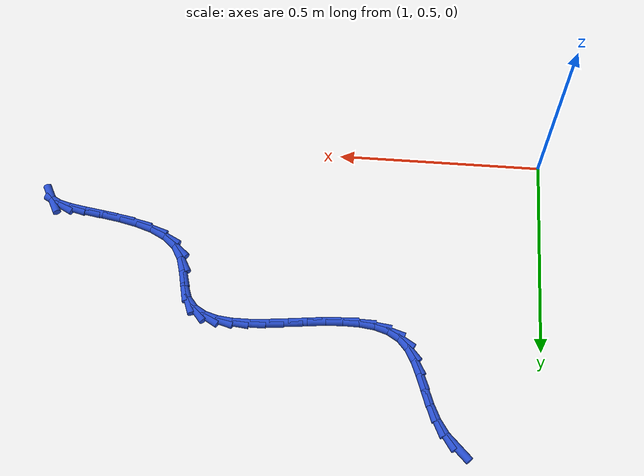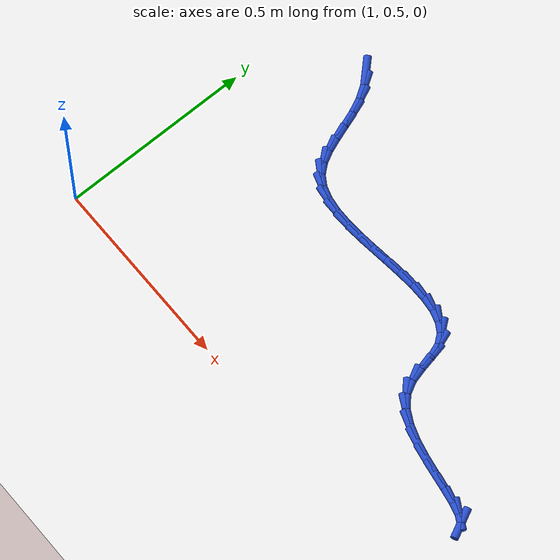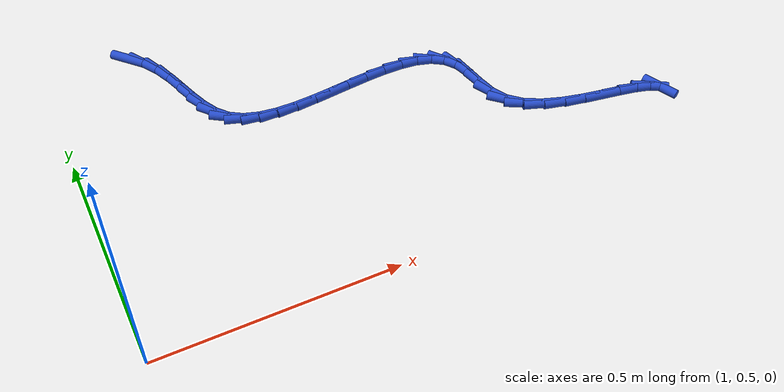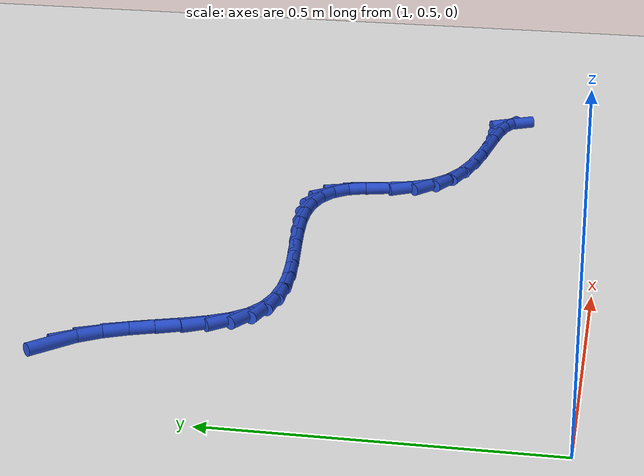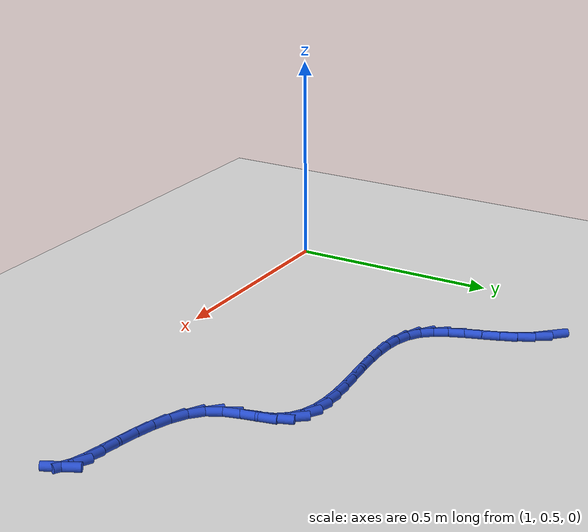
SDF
<sdf version="1.6">
 <world name="default">
  <model name="ground_plane">
   <static>1</static>
   <link name="link">
    <collision name="collision">
     <geometry><plane><normal>0 0 1</normal><size>100 100</size></plane></geometry>
     <surface><friction><ode><mu>100</mu><mu2>50</mu2></ode></friction></surface>
    </collision>
    <visual name="visual">
     <cast_shadows>0</cast_shadows>
     <geometry><plane><normal>0 0 1</normal><size>100 100</size></plane></geometry>
     <material>
      <script><uri>file://media/materials/scripts/gazebo.material</uri><name>Gazebo/WhiteGlow</name></script>
     </material>
    </visual>
   </link>
  </model>
  <model name="line">
   <link name="link_54">
    <pose>1.1929098045667912 1.25034103382618 0.01 0 1.57 -0.8032002500355849</pose>
    <collision name="collision">
     <geometry><cylinder><radius>0.01</radius><length>0.08</length></cylinder></geometry>
    </collision>
    <visual name="visual">
     <material>
      <script><name>Gazebo/Blue</name><uri>file://media/materials/scripts/gazebo.material</uri></script>
     </material>
     <geometry><cylinder><radius>0.01</radius><length>0.08</length></cylinder></geometry>
    </visual>
   </link>
   <link name="link_55">
    <pose>1.2198292674862001 1.2224456491440163 0.01 0 1.57 -0.9971599089499282</pose>
    <collision name="collision">
     <geometry><cylinder><radius>0.01</radius><length>0.08</length></cylinder></geometry>
    </collision>
    <visual name="visual">
     <material>
      <script><name>Gazebo/Blue</name><uri>file://media/materials/scripts/gazebo.material</uri></script>
     </material>
     <geometry><cylinder><radius>0.01</radius><length>0.08</length></cylinder></geometry>
    </visual>
   </link>
   <link name="link_56">
    <pose>1.2407832895362265 1.190014653340493 0.01 0 1.57 -1.1441190291686232</pose>
    <collision name="collision">
     <geometry><cylinder><radius>0.01</radius><length>0.08</length></cylinder></geometry>
    </collision>
    <visual name="visual">
     <material>
      <script><name>Gazebo/Blue</name><uri>file://media/materials/scripts/gazebo.material</uri></script>
     </material>
     <geometry><cylinder><radius>0.01</radius><length>0.08</length></cylinder></geometry>
    </visual>
   </link>
   <link name="link_57">
    <pose>1.2569736167109502 1.1544006421308444 0.01 0 1.57 -1.2252369603577207</pose>
    <collision name="collision">
     <geometry><cylinder><radius>0.01</radius><length>0.08</length></cylinder></geometry>
    </collision>
    <visual name="visual">
     <material>
      <script><name>Gazebo/Blue</name><uri>file://media/materials/scripts/gazebo.material</uri></script>
     </material>
     <geometry><cylinder><radius>0.01</radius><length>0.08</length></cylinder></geometry>
    </visual>
   </link>
   <link name="link_58">
    <pose>1.2702887396517943 1.1174146288812425 0.01 0 1.57 -1.2454152657191437</pose>
    <collision name="collision">
     <geometry><cylinder><radius>0.01</radius><length>0.08</length></cylinder></geometry>
    </collision>
    <visual name="visual">
     <material>
      <script><name>Gazebo/Blue</name><uri>file://media/materials/scripts/gazebo.material</uri></script>
     </material>
     <geometry><cylinder><radius>0.01</radius><length>0.08</length></cylinder></geometry>
    </visual>
   </link>
   <link name="link_59">
    <pose>1.2826183983591766 1.0808684609333672 0.01 0 1.57 -1.2025116066544055</pose>
    <collision name="collision">
     <geometry><cylinder><radius>0.01</radius><length>0.08</length></cylinder></geometry>
    </collision>
    <visual name="visual">
     <material>
      <script><name>Gazebo/Blue</name><uri>file://media/materials/scripts/gazebo.material</uri></script>
     </material>
     <geometry><cylinder><radius>0.01</radius><length>0.08</length></cylinder></geometry>
    </visual>
   </link>
   <link name="link_60">
    <pose>1.2958523328335143 1.0465739856288976 0.01 0 1.57 -1.0832943150114285</pose>
    <collision name="collision">
     <geometry><cylinder><radius>0.01</radius><length>0.08</length></cylinder></geometry>
    </collision>
    <visual name="visual">
     <material>
      <script><name>Gazebo/Blue</name><uri>file://media/materials/scripts/gazebo.material</uri></script>
     </material>
     <geometry><cylinder><radius>0.01</radius><length>0.08</length></cylinder></geometry>
    </visual>
   </link>
   <link name="link_61">
    <pose>1.3118802830752252 1.016343050309514 0.01 0 1.57 -0.8660760923200934</pose>
    <collision name="collision">
     <geometry><cylinder><radius>0.01</radius><length>0.08</length></cylinder></geometry>
    </collision>
    <visual name="visual">
     <material>
      <script><name>Gazebo/Blue</name><uri>file://media/materials/scripts/gazebo.material</uri></script>
     </material>
     <geometry><cylinder><radius>0.01</radius><length>0.08</length></cylinder></geometry>
    </visual>
   </link>
   <link name="link_62">
    <pose>1.3325919890847273 0.9919875023168959 0.01 0 1.57 -0.5657849297391847</pose>
    <collision name="collision">
     <geometry><cylinder><radius>0.01</radius><length>0.08</length></cylinder></geometry>
    </collision>
    <visual name="visual">
     <material>
      <script><name>Gazebo/Blue</name><uri>file://media/materials/scripts/gazebo.material</uri></script>
     </material>
     <geometry><cylinder><radius>0.01</radius><length>0.08</length></cylinder></geometry>
    </visual>
   </link>
   <link name="link_63">
    <pose>1.359479027373281 0.9749132180880576 0.01 0 1.57 -0.3082425800779235</pose>
    <collision name="collision">
     <geometry><cylinder><radius>0.01</radius><length>0.08</length></cylinder></geometry>
    </collision>
    <visual name="visual">
     <material>
      <script><name>Gazebo/Blue</name><uri>file://media/materials/scripts/gazebo.material</uri></script>
     </material>
     <geometry><cylinder><radius>0.01</radius><length>0.08</length></cylinder></geometry>
    </visual>
   </link>
   <link name="link_64">
    <pose>1.392078925475318 0.9645337089826356 0.01 0 1.57 -0.1302962452114974</pose>
    <collision name="collision">
     <geometry><cylinder><radius>0.01</radius><length>0.08</length></cylinder></geometry>
    </collision>
    <visual name="visual">
     <material>
      <script><name>Gazebo/Blue</name><uri>file://media/materials/scripts/gazebo.material</uri></script>
     </material>
     <geometry><cylinder><radius>0.01</radius><length>0.08</length></cylinder></geometry>
    </visual>
   </link>
   <link name="link_65">
    <pose>1.4293307414357517 0.9596522817415835 0.01 0 1.57 -0.014204694502514732</pose>
    <collision name="collision">
     <geometry><cylinder><radius>0.01</radius><length>0.08</length></cylinder></geometry>
    </collision>
    <visual name="visual">
     <material>
      <script><name>Gazebo/Blue</name><uri>file://media/materials/scripts/gazebo.material</uri></script>
     </material>
     <geometry><cylinder><radius>0.01</radius><length>0.08</length></cylinder></geometry>
    </visual>
   </link>
   <link name="link_66">
    <pose>1.4701733787565363 0.9590720855325297 0.01 0 1.57 0.058132410433115435</pose>
    <collision name="collision">
     <geometry><cylinder><radius>0.01</radius><length>0.08</length></cylinder></geometry>
    </collision>
    <visual name="visual">
     <material>
      <script><name>Gazebo/Blue</name><uri>file://media/materials/scripts/gazebo.material</uri></script>
     </material>
     <geometry><cylinder><radius>0.01</radius><length>0.08</length></cylinder></geometry>
    </visual>
   </link>
   <link name="link_67">
    <pose>1.5135457409396258 0.9615962695231034 0.01 0 1.57 0.09851183140055493</pose>
    <collision name="collision">
     <geometry><cylinder><radius>0.01</radius><length>0.08</length></cylinder></geometry>
    </collision>
    <visual name="visual">
     <material>
      <script><name>Gazebo/Blue</name><uri>file://media/materials/scripts/gazebo.material</uri></script>
     </material>
     <geometry><cylinder><radius>0.01</radius><length>0.08</length></cylinder></geometry>
    </visual>
   </link>
   <link name="link_68">
    <pose>1.5583867314869746 0.9660279828809333 0.01 0 1.57 0.11316220378862993</pose>
    <collision name="collision">
     <geometry><cylinder><radius>0.01</radius><length>0.08</length></cylinder></geometry>
    </collision>
    <visual name="visual">
     <material>
      <script><name>Gazebo/Blue</name><uri>file://media/materials/scripts/gazebo.material</uri></script>
     </material>
     <geometry><cylinder><radius>0.01</radius><length>0.08</length></cylinder></geometry>
    </visual>
   </link>
   <link name="link_69">
    <pose>1.6036352539005372 0.9711703747736475 0.01 0 1.57 0.1040343878712775</pose>
    <collision name="collision">
     <geometry><cylinder><radius>0.01</radius><length>0.08</length></cylinder></geometry>
    </collision>
    <visual name="visual">
     <material>
      <script><name>Gazebo/Blue</name><uri>file://media/materials/scripts/gazebo.material</uri></script>
     </material>
     <geometry><cylinder><radius>0.01</radius><length>0.08</length></cylinder></geometry>
    </visual>
   </link>
   <link name="link_70">
    <pose>1.6482302116822671 0.9758265943688758 0.01 0 1.57 0.06922632797128843</pose>
    <collision name="collision">
     <geometry><cylinder><radius>0.01</radius><length>0.08</length></cylinder></geometry>
    </collision>
    <visual name="visual">
     <material>
      <script><name>Gazebo/Blue</name><uri>file://media/materials/scripts/gazebo.material</uri></script>
     </material>
     <geometry><cylinder><radius>0.01</radius><length>0.08</length></cylinder></geometry>
    </visual>
   </link>
   <link name="link_71">
    <pose>1.6911105083341194 0.978799790834246 0.01 0 1.57 0.0023269768702133004</pose>
    <collision name="collision">
     <geometry><cylinder><radius>0.01</radius><length>0.08</length></cylinder></geometry>
    </collision>
    <visual name="visual">
     <material>
      <script><name>Gazebo/Blue</name><uri>file://media/materials/scripts/gazebo.material</uri></script>
     </material>
     <geometry><cylinder><radius>0.01</radius><length>0.08</length></cylinder></geometry>
    </visual>
   </link>
   <link name="link_72">
    <pose>1.7312150473580474 0.9788931133373868 0.01 0 1.57 -0.10939489236948147</pose>
    <collision name="collision">
     <geometry><cylinder><radius>0.01</radius><length>0.08</length></cylinder></geometry>
    </collision>
    <visual name="visual">
     <material>
      <script><name>Gazebo/Blue</name><uri>file://media/materials/scripts/gazebo.material</uri></script>
     </material>
     <geometry><cylinder><radius>0.01</radius><length>0.08</length></cylinder></geometry>
    </visual>
   </link>
   <link name="link_73">
    <pose>1.7674827322560065 0.9749097110459274 0.01 0 1.57 -0.28694857712832605</pose>
    <collision name="collision">
     <geometry><cylinder><radius>0.01</radius><length>0.08</length></cylinder></geometry>
    </collision>
    <visual name="visual">
     <material>
      <script><name>Gazebo/Blue</name><uri>file://media/materials/scripts/gazebo.material</uri></script>
     </material>
     <geometry><cylinder><radius>0.01</radius><length>0.08</length></cylinder></geometry>
    </visual>
   </link>
   <link name="link_74">
    <pose>1.79885246652995 0.9656527331274963 0.01 0 1.57 -0.5542215421288119</pose>
    <collision name="collision">
     <geometry><cylinder><radius>0.01</radius><length>0.08</length></cylinder></geometry>
    </collision>
    <visual name="visual">
     <material>
      <script><name>Gazebo/Blue</name><uri>file://media/materials/scripts/gazebo.material</uri></script>
     </material>
     <geometry><cylinder><radius>0.01</radius><length>0.08</length></cylinder></geometry>
    </visual>
   </link>
   <link name="link_75">
    <pose>1.8242631536818323 0.9499253287497226 0.01 0 1.57 -0.9045890638301629</pose>
    <collision name="collision">
     <geometry><cylinder><radius>0.01</radius><length>0.08</length></cylinder></geometry>
    </collision>
    <visual name="visual">
     <material>
      <script><name>Gazebo/Blue</name><uri>file://media/materials/scripts/gazebo.material</uri></script>
     </material>
     <geometry><cylinder><radius>0.01</radius><length>0.08</length></cylinder></geometry>
    </visual>
   </link>
   <link name="link_76">
    <pose>1.842653697213608 0.9265306470802339 0.01 0 1.57 -1.237732944576227</pose>
    <collision name="collision">
     <geometry><cylinder><radius>0.01</radius><length>0.08</length></cylinder></geometry>
    </collision>
    <visual name="visual">
     <material>
      <script><name>Gazebo/Blue</name><uri>file://media/materials/scripts/gazebo.material</uri></script>
     </material>
     <geometry><cylinder><radius>0.01</radius><length>0.08</length></cylinder></geometry>
    </visual>
   </link>
   <link name="link_77">
    <pose>1.853611738079482 0.8948555469258339 0.01 0 1.57 -1.3712552834792449</pose>
    <collision name="collision">
     <geometry><cylinder><radius>0.01</radius><length>0.08</length></cylinder></geometry>
    </collision>
    <visual name="visual">
     <material>
      <script><name>Gazebo/Blue</name><uri>file://media/materials/scripts/gazebo.material</uri></script>
     </material>
     <geometry><cylinder><radius>0.01</radius><length>0.08</length></cylinder></geometry>
    </visual>
   </link>
   <link name="link_78">
    <pose>1.861032261327542 0.8581624738320152 0.01 0 1.57 -1.3177731376061386</pose>
    <collision name="collision">
     <geometry><cylinder><radius>0.01</radius><length>0.08</length></cylinder></geometry>
    </collision>
    <visual name="visual">
     <material>
      <script><name>Gazebo/Blue</name><uri>file://media/materials/scripts/gazebo.material</uri></script>
     </material>
     <geometry><cylinder><radius>0.01</radius><length>0.08</length></cylinder></geometry>
    </visual>
   </link>
   <link name="link_79">
    <pose>1.870565386413749 0.8212930774866637 0.01 0 1.57 -1.0794692126343706</pose>
    <collision name="collision">
     <geometry><cylinder><radius>0.01</radius><length>0.08</length></cylinder></geometry>
    </collision>
    <visual name="visual">
     <material>
      <script><name>Gazebo/Blue</name><uri>file://media/materials/scripts/gazebo.material</uri></script>
     </material>
     <geometry><cylinder><radius>0.01</radius><length>0.08</length></cylinder></geometry>
    </visual>
   </link>
   <link name="link_80">
    <pose>1.8878153494044805 0.7890558223654525 0.01 0 1.57 -0.7387544151305113</pose>
    <collision name="collision">
     <geometry><cylinder><radius>0.01</radius><length>0.08</length></cylinder></geometry>
    </collision>
    <visual name="visual">
     <material>
      <script><name>Gazebo/Blue</name><uri>file://media/materials/scripts/gazebo.material</uri></script>
     </material>
     <geometry><cylinder><radius>0.01</radius><length>0.08</length></cylinder></geometry>
    </visual>
   </link>
   <link name="link_81">
    <pose>1.9153306126592706 0.7639946988905428 0.01 0 1.57 -0.48697570390945777</pose>
    <collision name="collision">
     <geometry><cylinder><radius>0.01</radius><length>0.08</length></cylinder></geometry>
    </collision>
    <visual name="visual">
     <material>
      <script><name>Gazebo/Blue</name><uri>file://media/materials/scripts/gazebo.material</uri></script>
     </material>
     <geometry><cylinder><radius>0.01</radius><length>0.08</length></cylinder></geometry>
    </visual>
   </link>
   <link name="link_82">
    <pose>1.9509265913700884 0.7451462838032391 0.01 0 1.57 -0.32624380002482245</pose>
    <collision name="collision">
     <geometry><cylinder><radius>0.01</radius><length>0.08</length></cylinder></geometry>
    </collision>
    <visual name="visual">
     <material>
      <script><name>Gazebo/Blue</name><uri>file://media/materials/scripts/gazebo.material</uri></script>
     </material>
     <geometry><cylinder><radius>0.01</radius><length>0.08</length></cylinder></geometry>
    </visual>
   </link>
   <link name="link_83">
    <pose>1.99201195425192 0.7312457353067456 0.01 0 1.57 -0.2282555318944739</pose>
    <collision name="collision">
     <geometry><cylinder><radius>0.01</radius><length>0.08</length></cylinder></geometry>
    </collision>
    <visual name="visual">
     <material>
      <script><name>Gazebo/Blue</name><uri>file://media/materials/scripts/gazebo.material</uri></script>
     </material>
     <geometry><cylinder><radius>0.01</radius><length>0.08</length></cylinder></geometry>
    </visual>
   </link>
   <link name="link_84">
    <pose>2.0359953700197506 0.7210282116042656 0.01 0 1.57 -0.17430944093502387</pose>
    <collision name="collision">
     <geometry><cylinder><radius>0.01</radius><length>0.08</length></cylinder></geometry>
    </collision>
    <visual name="visual">
     <material>
      <script><name>Gazebo/Blue</name><uri>file://media/materials/scripts/gazebo.material</uri></script>
     </material>
     <geometry><cylinder><radius>0.01</radius><length>0.08</length></cylinder></geometry>
    </visual>
   </link>
   <link name="link_85">
    <pose>2.080285507388568 0.7132288708990023 0.01 0 1.57 -0.1569165395626181</pose>
    <collision name="collision">
     <geometry><cylinder><radius>0.01</radius><length>0.08</length></cylinder></geometry>
    </collision>
    <visual name="visual">
     <material>
      <script><name>Gazebo/Blue</name><uri>file://media/materials/scripts/gazebo.material</uri></script>
     </material>
     <geometry><cylinder><radius>0.01</radius><length>0.08</length></cylinder></geometry>
    </visual>
   </link>
   <link name="link_86">
    <pose>2.1222910350733573 0.70658287139416 0.01 0 1.57 -0.18002728659213865</pose>
    <collision name="collision">
     <geometry><cylinder><radius>0.01</radius><length>0.08</length></cylinder></geometry>
    </collision>
    <visual name="visual">
     <material>
      <script><name>Gazebo/Blue</name><uri>file://media/materials/scripts/gazebo.material</uri></script>
     </material>
     <geometry><cylinder><radius>0.01</radius><length>0.08</length></cylinder></geometry>
    </visual>
   </link>
   <link name="link_87">
    <pose>2.1594206217891054 0.6998253712929422 0.01 0 1.57 -0.2676359720279419</pose>
    <collision name="collision">
     <geometry><cylinder><radius>0.01</radius><length>0.08</length></cylinder></geometry>
    </collision>
    <visual name="visual">
     <material>
      <script><name>Gazebo/Blue</name><uri>file://media/materials/scripts/gazebo.material</uri></script>
     </material>
     <geometry><cylinder><radius>0.01</radius><length>0.08</length></cylinder></geometry>
    </visual>
   </link>
   <link name="link_88">
    <pose>2.189082936250798 0.6916915287985521 0.01 0 1.57 -0.5025684624119213</pose>
    <collision name="collision">
     <geometry><cylinder><radius>0.01</radius><length>0.08</length></cylinder></geometry>
    </collision>
    <visual name="visual">
     <material>
      <script><name>Gazebo/Blue</name><uri>file://media/materials/scripts/gazebo.material</uri></script>
     </material>
     <geometry><cylinder><radius>0.01</radius><length>0.08</length></cylinder></geometry>
    </visual>
   </link>
   <link name="link_89">
    <pose>2.2086866471734212 0.6809165021141937 0.01 0 1.57 -1.114003241574482</pose>
    <collision name="collision">
     <geometry><cylinder><radius>0.01</radius><length>0.08</length></cylinder></geometry>
    </collision>
    <visual name="visual">
     <material>
      <script><name>Gazebo/Blue</name><uri>file://media/materials/scripts/gazebo.material</uri></script>
     </material>
     <geometry><cylinder><radius>0.01</radius><length>0.08</length></cylinder></geometry>
    </visual>
   </link>
  </model>
 </world>
</sdf>
